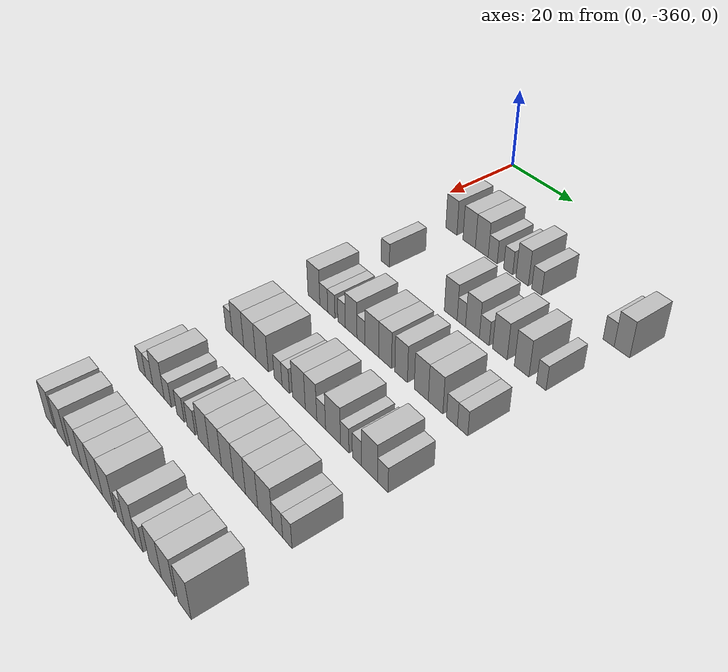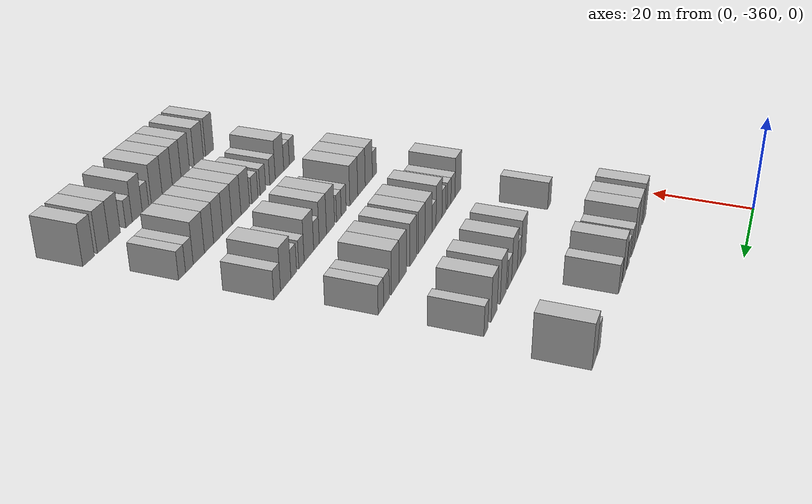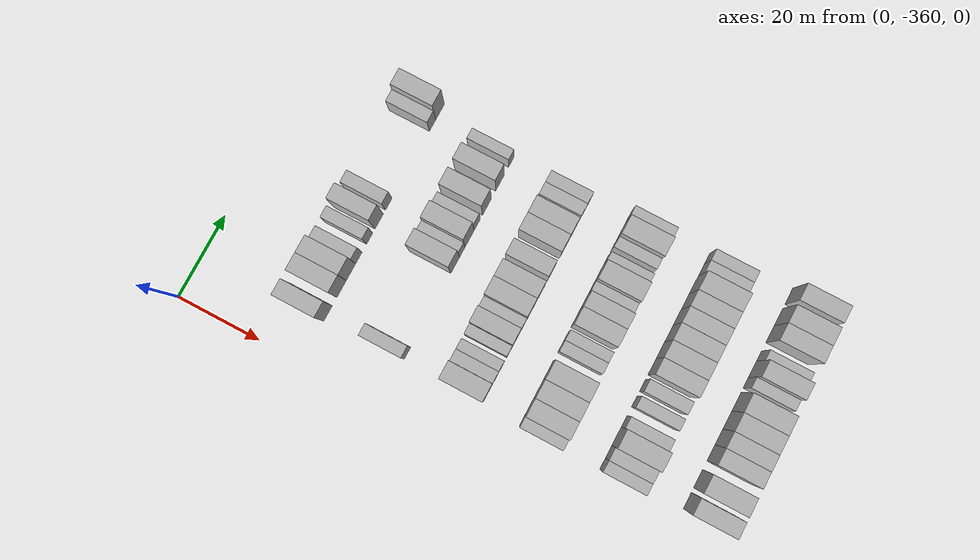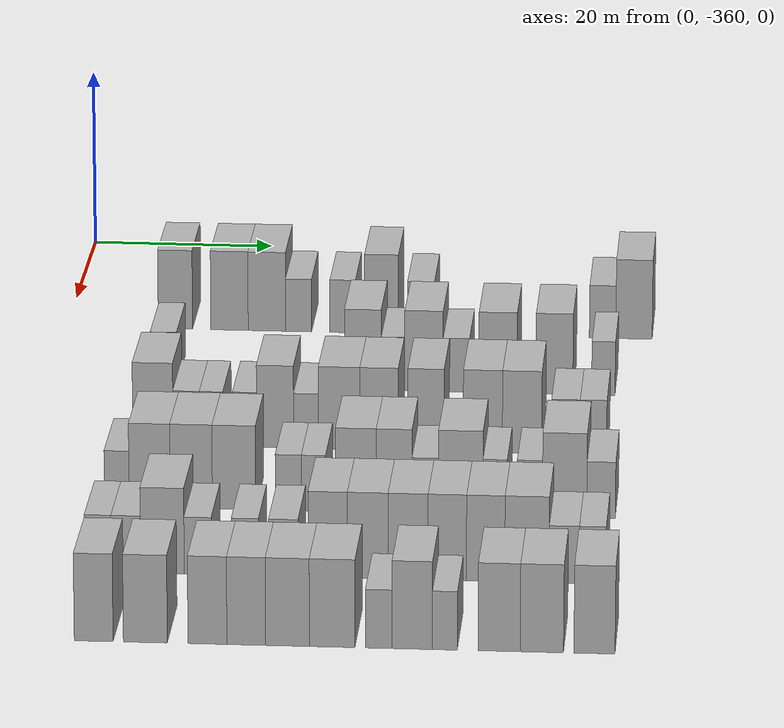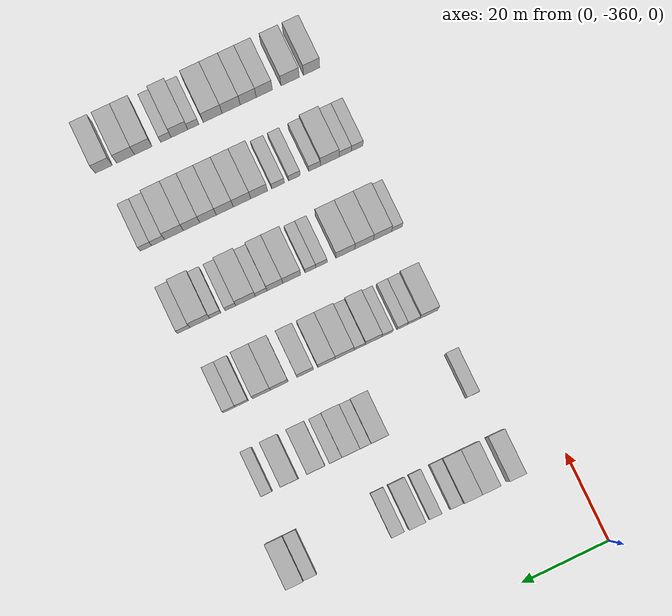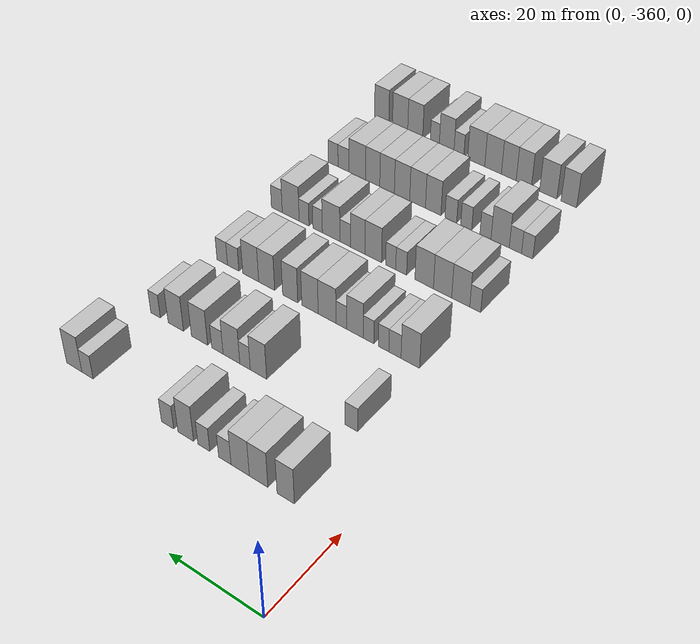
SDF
<sdf version="1.6">
 <world name="default">
  <model name="building_1">
   <static>1</static>
   <pose>25.0000 -348.1258 0 0.000000 0.000000 0.000000</pose>
   <link name="link">
    <pose>0 0 4.50 0 0 0</pose>
    <collision name="collision"><geometry><box><size>10.0000 3.7484 9.0000</size></box></geometry></collision>
    <visual name="visual">
     <cast_shadows>0</cast_shadows>
     <geometry><box><size>10.0000 3.7484 9.0000</size></box></geometry>
     <material>
      <script>
       <uri>model://HANNAS_wall/materials/scripts</uri>
       <uri>model://HANNAS_wall/materials/textures</uri>
       <name>vrc/HANNAS_wall</name>
      </script>
     </material>
    </visual>
   </link>
  </model>
  <model name="building_2">
   <static>1</static>
   <pose>25.0000 -342.2072 0 0.000000 0.000000 0.000000</pose>
   <link name="link">
    <pose>0 0 4.50 0 0 0</pose>
    <collision name="collision"><geometry><box><size>10.0000 4.0888 9.0000</size></box></geometry></collision>
    <visual name="visual">
     <cast_shadows>0</cast_shadows>
     <geometry><box><size>10.0000 4.0888 9.0000</size></box></geometry>
     <material>
      <script>
       <uri>model://HANNAS_wall/materials/scripts</uri>
       <uri>model://HANNAS_wall/materials/textures</uri>
       <name>vrc/HANNAS_wall</name>
      </script>
     </material>
    </visual>
   </link>
  </model>
  <model name="building_3">
   <static>1</static>
   <pose>25.0000 -338.1127 0 0.000000 0.000000 0.000000</pose>
   <link name="link">
    <pose>0 0 4.50 0 0 0</pose>
    <collision name="collision"><geometry><box><size>10.0000 4.1001 9.0000</size></box></geometry></collision>
    <visual name="visual">
     <cast_shadows>0</cast_shadows>
     <geometry><box><size>10.0000 4.1001 9.0000</size></box></geometry>
     <material>
      <script>
       <uri>model://HANNAS_wall/materials/scripts</uri>
       <uri>model://HANNAS_wall/materials/textures</uri>
       <name>vrc/HANNAS_wall</name>
      </script>
     </material>
    </visual>
   </link>
  </model>
  <model name="building_4">
   <static>1</static>
   <pose>25.0000 -334.6447 0 0.000000 0.000000 0.000000</pose>
   <link name="link">
    <pose>0 0 3.00 0 0 0</pose>
    <collision name="collision"><geometry><box><size>10.0000 2.8359 6.0000</size></box></geometry></collision>
    <visual name="visual">
     <cast_shadows>0</cast_shadows>
     <geometry><box><size>10.0000 2.8359 6.0000</size></box></geometry>
     <material>
      <script>
       <uri>model://HANNAS_wall/materials/scripts</uri>
       <uri>model://HANNAS_wall/materials/textures</uri>
       <name>vrc/HANNAS_wall</name>
      </script>
     </material>
    </visual>
   </link>
  </model>
  <model name="building_5">
   <static>1</static>
   <pose>25.0000 -329.8384 0 0.000000 0.000000 0.000000</pose>
   <link name="link">
    <pose>0 0 3.00 0 0 0</pose>
    <collision name="collision"><geometry><box><size>10.0000 2.7767 6.0000</size></box></geometry></collision>
    <visual name="visual">
     <cast_shadows>0</cast_shadows>
     <geometry><box><size>10.0000 2.7767 6.0000</size></box></geometry>
     <material>
      <script>
       <uri>model://HANNAS_wall/materials/scripts</uri>
       <uri>model://HANNAS_wall/materials/textures</uri>
       <name>vrc/HANNAS_wall</name>
      </script>
     </material>
    </visual>
   </link>
  </model>
  <model name="building_6">
   <static>1</static>
   <pose>25.0000 -325.6081 0 0.000000 0.000000 0.000000</pose>
   <link name="link">
    <pose>0 0 4.50 0 0 0</pose>
    <collision name="collision"><geometry><box><size>10.0000 3.6839 9.0000</size></box></geometry></collision>
    <visual name="visual">
     <cast_shadows>0</cast_shadows>
     <geometry><box><size>10.0000 3.6839 9.0000</size></box></geometry>
     <material>
      <script>
       <uri>model://HANNAS_wall/materials/scripts</uri>
       <uri>model://HANNAS_wall/materials/textures</uri>
       <name>vrc/HANNAS_wall</name>
      </script>
     </material>
    </visual>
   </link>
  </model>
  <model name="building_7">
   <static>1</static>
   <pose>25.0000 -321.3060 0 0.000000 0.000000 0.000000</pose>
   <link name="link">
    <pose>0 0 3.00 0 0 0</pose>
    <collision name="collision"><geometry><box><size>10.0000 2.9201 6.0000</size></box></geometry></collision>
    <visual name="visual">
     <cast_shadows>0</cast_shadows>
     <geometry><box><size>10.0000 2.9201 6.0000</size></box></geometry>
     <material>
      <script>
       <uri>model://HANNAS_wall/materials/scripts</uri>
       <uri>model://HANNAS_wall/materials/textures</uri>
       <name>vrc/HANNAS_wall</name>
      </script>
     </material>
    </visual>
   </link>
  </model>
  <model name="building_8">
   <static>1</static>
   <pose>25.0000 -301.5321 0 0.000000 0.000000 0.000000</pose>
   <link name="link">
    <pose>0 0 3.00 0 0 0</pose>
    <collision name="collision"><geometry><box><size>10.0000 2.8759 6.0000</size></box></geometry></collision>
    <visual name="visual">
     <cast_shadows>0</cast_shadows>
     <geometry><box><size>10.0000 2.8759 6.0000</size></box></geometry>
     <material>
      <script>
       <uri>model://HANNAS_wall/materials/scripts</uri>
       <uri>model://HANNAS_wall/materials/textures</uri>
       <name>vrc/HANNAS_wall</name>
      </script>
     </material>
    </visual>
   </link>
  </model>
  <model name="building_9">
   <static>1</static>
   <pose>25.0000 -298.1190 0 0.000000 0.000000 0.000000</pose>
   <link name="link">
    <pose>0 0 4.50 0 0 0</pose>
    <collision name="collision"><geometry><box><size>10.0000 3.9503 9.0000</size></box></geometry></collision>
    <visual name="visual">
     <cast_shadows>0</cast_shadows>
     <geometry><box><size>10.0000 3.9503 9.0000</size></box></geometry>
     <material>
      <script>
       <uri>model://HANNAS_wall/materials/scripts</uri>
       <uri>model://HANNAS_wall/materials/textures</uri>
       <name>vrc/HANNAS_wall</name>
      </script>
     </material>
    </visual>
   </link>
  </model>
  <model name="building_173">
   <static>1</static>
   <pose>44.0000 -347.5915 0 0.000000 0.000000 0.000000</pose>
   <link name="link">
    <pose>0 0 3.00 0 0 0</pose>
    <collision name="collision"><geometry><box><size>10.0000 2.8170 6.0000</size></box></geometry></collision>
    <visual name="visual">
     <cast_shadows>0</cast_shadows>
     <geometry><box><size>10.0000 2.8170 6.0000</size></box></geometry>
     <material>
      <script>
       <uri>model://HANNAS_wall/materials/scripts</uri>
       <uri>model://HANNAS_wall/materials/textures</uri>
       <name>vrc/HANNAS_wall</name>
      </script>
     </material>
    </visual>
   </link>
  </model>
  <model name="building_174">
   <static>1</static>
   <pose>44.0000 -326.3279 0 0.000000 0.000000 0.000000</pose>
   <link name="link">
    <pose>0 0 4.50 0 0 0</pose>
    <collision name="collision"><geometry><box><size>10.0000 3.9034 9.0000</size></box></geometry></collision>
    <visual name="visual">
     <cast_shadows>0</cast_shadows>
     <geometry><box><size>10.0000 3.9034 9.0000</size></box></geometry>
     <material>
      <script>
       <uri>model://HANNAS_wall/materials/scripts</uri>
       <uri>model://HANNAS_wall/materials/textures</uri>
       <name>vrc/HANNAS_wall</name>
      </script>
     </material>
    </visual>
   </link>
  </model>
  <model name="building_175">
   <static>1</static>
   <pose>44.0000 -323.1210 0 0.000000 0.000000 0.000000</pose>
   <link name="link">
    <pose>0 0 3.00 0 0 0</pose>
    <collision name="collision"><geometry><box><size>10.0000 2.5105 6.0000</size></box></geometry></collision>
    <visual name="visual">
     <cast_shadows>0</cast_shadows>
     <geometry><box><size>10.0000 2.5105 6.0000</size></box></geometry>
     <material>
      <script>
       <uri>model://HANNAS_wall/materials/scripts</uri>
       <uri>model://HANNAS_wall/materials/textures</uri>
       <name>vrc/HANNAS_wall</name>
      </script>
     </material>
    </visual>
   </link>
  </model>
  <model name="building_176">
   <static>1</static>
   <pose>44.0000 -319.8290 0 0.000000 0.000000 0.000000</pose>
   <link name="link">
    <pose>0 0 4.50 0 0 0</pose>
    <collision name="collision"><geometry><box><size>10.0000 4.0735 9.0000</size></box></geometry></collision>
    <visual name="visual">
     <cast_shadows>0</cast_shadows>
     <geometry><box><size>10.0000 4.0735 9.0000</size></box></geometry>
     <material>
      <script>
       <uri>model://HANNAS_wall/materials/scripts</uri>
       <uri>model://HANNAS_wall/materials/textures</uri>
       <name>vrc/HANNAS_wall</name>
      </script>
     </material>
    </visual>
   </link>
  </model>
  <model name="building_177">
   <static>1</static>
   <pose>44.0000 -316.3915 0 0.000000 0.000000 0.000000</pose>
   <link name="link">
    <pose>0 0 3.00 0 0 0</pose>
    <collision name="collision"><geometry><box><size>10.0000 2.8015 6.0000</size></box></geometry></collision>
    <visual name="visual">
     <cast_shadows>0</cast_shadows>
     <geometry><box><size>10.0000 2.8015 6.0000</size></box></geometry>
     <material>
      <script>
       <uri>model://HANNAS_wall/materials/scripts</uri>
       <uri>model://HANNAS_wall/materials/textures</uri>
       <name>vrc/HANNAS_wall</name>
      </script>
     </material>
    </visual>
   </link>
  </model>
  <model name="building_178">
   <static>1</static>
   <pose>44.0000 -311.9618 0 0.000000 0.000000 0.000000</pose>
   <link name="link">
    <pose>0 0 4.50 0 0 0</pose>
    <collision name="collision"><geometry><box><size>10.0000 4.0581 9.0000</size></box></geometry></collision>
    <visual name="visual">
     <cast_shadows>0</cast_shadows>
     <geometry><box><size>10.0000 4.0581 9.0000</size></box></geometry>
     <material>
      <script>
       <uri>model://HANNAS_wall/materials/scripts</uri>
       <uri>model://HANNAS_wall/materials/textures</uri>
       <name>vrc/HANNAS_wall</name>
      </script>
     </material>
    </visual>
   </link>
  </model>
  <model name="building_179">
   <static>1</static>
   <pose>44.0000 -305.9661 0 0.000000 0.000000 0.000000</pose>
   <link name="link">
    <pose>0 0 4.50 0 0 0</pose>
    <collision name="collision"><geometry><box><size>10.0000 3.9331 9.0000</size></box></geometry></collision>
    <visual name="visual">
     <cast_shadows>0</cast_shadows>
     <geometry><box><size>10.0000 3.9331 9.0000</size></box></geometry>
     <material>
      <script>
       <uri>model://HANNAS_wall/materials/scripts</uri>
       <uri>model://HANNAS_wall/materials/textures</uri>
       <name>vrc/HANNAS_wall</name>
      </script>
     </material>
    </visual>
   </link>
  </model>
  <model name="building_180">
   <static>1</static>
   <pose>44.0000 -300.7584 0 0.000000 0.000000 0.000000</pose>
   <link name="link">
    <pose>0 0 3.00 0 0 0</pose>
    <collision name="collision"><geometry><box><size>10.0000 2.4824 6.0000</size></box></geometry></collision>
    <visual name="visual">
     <cast_shadows>0</cast_shadows>
     <geometry><box><size>10.0000 2.4824 6.0000</size></box></geometry>
     <material>
      <script>
       <uri>model://HANNAS_wall/materials/scripts</uri>
       <uri>model://HANNAS_wall/materials/textures</uri>
       <name>vrc/HANNAS_wall</name>
      </script>
     </material>
    </visual>
   </link>
  </model>
  <model name="building_348">
   <static>1</static>
   <pose>63.0000 -346.9010 0 0.000000 0.000000 0.000000</pose>
   <link name="link">
    <pose>0 0 4.50 0 0 0</pose>
    <collision name="collision"><geometry><box><size>10.0000 4.1980 9.0000</size></box></geometry></collision>
    <visual name="visual">
     <cast_shadows>0</cast_shadows>
     <geometry><box><size>10.0000 4.1980 9.0000</size></box></geometry>
     <material>
      <script>
       <uri>model://HANNAS_wall/materials/scripts</uri>
       <uri>model://HANNAS_wall/materials/textures</uri>
       <name>vrc/HANNAS_wall</name>
      </script>
     </material>
    </visual>
   </link>
  </model>
  <model name="building_349">
   <static>1</static>
   <pose>63.0000 -343.4154 0 0.000000 0.000000 0.000000</pose>
   <link name="link">
    <pose>0 0 3.00 0 0 0</pose>
    <collision name="collision"><geometry><box><size>10.0000 2.7731 6.0000</size></box></geometry></collision>
    <visual name="visual">
     <cast_shadows>0</cast_shadows>
     <geometry><box><size>10.0000 2.7731 6.0000</size></box></geometry>
     <material>
      <script>
       <uri>model://HANNAS_wall/materials/scripts</uri>
       <uri>model://HANNAS_wall/materials/textures</uri>
       <name>vrc/HANNAS_wall</name>
      </script>
     </material>
    </visual>
   </link>
  </model>
  <model name="building_350">
   <static>1</static>
   <pose>63.0000 -340.8067 0 0.000000 0.000000 0.000000</pose>
   <link name="link">
    <pose>0 0 3.00 0 0 0</pose>
    <collision name="collision"><geometry><box><size>10.0000 2.4443 6.0000</size></box></geometry></collision>
    <visual name="visual">
     <cast_shadows>0</cast_shadows>
     <geometry><box><size>10.0000 2.4443 6.0000</size></box></geometry>
     <material>
      <script>
       <uri>model://HANNAS_wall/materials/scripts</uri>
       <uri>model://HANNAS_wall/materials/textures</uri>
       <name>vrc/HANNAS_wall</name>
      </script>
     </material>
    </visual>
   </link>
  </model>
  <model name="building_351">
   <static>1</static>
   <pose>63.0000 -337.3330 0 0.000000 0.000000 0.000000</pose>
   <link name="link">
    <pose>0 0 3.00 0 0 0</pose>
    <collision name="collision"><geometry><box><size>10.0000 2.5032 6.0000</size></box></geometry></collision>
    <visual name="visual">
     <cast_shadows>0</cast_shadows>
     <geometry><box><size>10.0000 2.5032 6.0000</size></box></geometry>
     <material>
      <script>
       <uri>model://HANNAS_wall/materials/scripts</uri>
       <uri>model://HANNAS_wall/materials/textures</uri>
       <name>vrc/HANNAS_wall</name>
      </script>
     </material>
    </visual>
   </link>
  </model>
  <model name="building_352">
   <static>1</static>
   <pose>63.0000 -334.1559 0 0.000000 0.000000 0.000000</pose>
   <link name="link">
    <pose>0 0 4.50 0 0 0</pose>
    <collision name="collision"><geometry><box><size>10.0000 3.8510 9.0000</size></box></geometry></collision>
    <visual name="visual">
     <cast_shadows>0</cast_shadows>
     <geometry><box><size>10.0000 3.8510 9.0000</size></box></geometry>
     <material>
      <script>
       <uri>model://HANNAS_wall/materials/scripts</uri>
       <uri>model://HANNAS_wall/materials/textures</uri>
       <name>vrc/HANNAS_wall</name>
      </script>
     </material>
    </visual>
   </link>
  </model>
  <model name="building_353">
   <static>1</static>
   <pose>63.0000 -330.9422 0 0.000000 0.000000 0.000000</pose>
   <link name="link">
    <pose>0 0 3.00 0 0 0</pose>
    <collision name="collision"><geometry><box><size>10.0000 2.5764 6.0000</size></box></geometry></collision>
    <visual name="visual">
     <cast_shadows>0</cast_shadows>
     <geometry><box><size>10.0000 2.5764 6.0000</size></box></geometry>
     <material>
      <script>
       <uri>model://HANNAS_wall/materials/scripts</uri>
       <uri>model://HANNAS_wall/materials/textures</uri>
       <name>vrc/HANNAS_wall</name>
      </script>
     </material>
    </visual>
   </link>
  </model>
  <model name="building_354">
   <static>1</static>
   <pose>63.0000 -327.4999 0 0.000000 0.000000 0.000000</pose>
   <link name="link">
    <pose>0 0 4.50 0 0 0</pose>
    <collision name="collision"><geometry><box><size>10.0000 4.3082 9.0000</size></box></geometry></collision>
    <visual name="visual">
     <cast_shadows>0</cast_shadows>
     <geometry><box><size>10.0000 4.3082 9.0000</size></box></geometry>
     <material>
      <script>
       <uri>model://HANNAS_wall/materials/scripts</uri>
       <uri>model://HANNAS_wall/materials/textures</uri>
       <name>vrc/HANNAS_wall</name>
      </script>
     </material>
    </visual>
   </link>
  </model>
  <model name="building_355">
   <static>1</static>
   <pose>63.0000 -323.3483 0 0.000000 0.000000 0.000000</pose>
   <link name="link">
    <pose>0 0 4.50 0 0 0</pose>
    <collision name="collision"><geometry><box><size>10.0000 3.9948 9.0000</size></box></geometry></collision>
    <visual name="visual">
     <cast_shadows>0</cast_shadows>
     <geometry><box><size>10.0000 3.9948 9.0000</size></box></geometry>
     <material>
      <script>
       <uri>model://HANNAS_wall/materials/scripts</uri>
       <uri>model://HANNAS_wall/materials/textures</uri>
       <name>vrc/HANNAS_wall</name>
      </script>
     </material>
    </visual>
   </link>
  </model>
  <model name="building_356">
   <static>1</static>
   <pose>63.0000 -318.4736 0 0.000000 0.000000 0.000000</pose>
   <link name="link">
    <pose>0 0 4.50 0 0 0</pose>
    <collision name="collision"><geometry><box><size>10.0000 3.7547 9.0000</size></box></geometry></collision>
    <visual name="visual">
     <cast_shadows>0</cast_shadows>
     <geometry><box><size>10.0000 3.7547 9.0000</size></box></geometry>
     <material>
      <script>
       <uri>model://HANNAS_wall/materials/scripts</uri>
       <uri>model://HANNAS_wall/materials/textures</uri>
       <name>vrc/HANNAS_wall</name>
      </script>
     </material>
    </visual>
   </link>
  </model>
  <model name="building_357">
   <static>1</static>
   <pose>63.0000 -312.5669 0 0.000000 0.000000 0.000000</pose>
   <link name="link">
    <pose>0 0 4.50 0 0 0</pose>
    <collision name="collision"><geometry><box><size>10.0000 4.0587 9.0000</size></box></geometry></collision>
    <visual name="visual">
     <cast_shadows>0</cast_shadows>
     <geometry><box><size>10.0000 4.0587 9.0000</size></box></geometry>
     <material>
      <script>
       <uri>model://HANNAS_wall/materials/scripts</uri>
       <uri>model://HANNAS_wall/materials/textures</uri>
       <name>vrc/HANNAS_wall</name>
      </script>
     </material>
    </visual>
   </link>
  </model>
  <model name="building_358">
   <static>1</static>
   <pose>63.0000 -308.4994 0 0.000000 0.000000 0.000000</pose>
   <link name="link">
    <pose>0 0 4.50 0 0 0</pose>
    <collision name="collision"><geometry><box><size>10.0000 4.0764 9.0000</size></box></geometry></collision>
    <visual name="visual">
     <cast_shadows>0</cast_shadows>
     <geometry><box><size>10.0000 4.0764 9.0000</size></box></geometry>
     <material>
      <script>
       <uri>model://HANNAS_wall/materials/scripts</uri>
       <uri>model://HANNAS_wall/materials/textures</uri>
       <name>vrc/HANNAS_wall</name>
      </script>
     </material>
    </visual>
   </link>
  </model>
  <model name="building_359">
   <static>1</static>
   <pose>63.0000 -303.9782 0 0.000000 0.000000 0.000000</pose>
   <link name="link">
    <pose>0 0 3.00 0 0 0</pose>
    <collision name="collision"><geometry><box><size>10.0000 2.9660 6.0000</size></box></geometry></collision>
    <visual name="visual">
     <cast_shadows>0</cast_shadows>
     <geometry><box><size>10.0000 2.9660 6.0000</size></box></geometry>
     <material>
      <script>
       <uri>model://HANNAS_wall/materials/scripts</uri>
       <uri>model://HANNAS_wall/materials/textures</uri>
       <name>vrc/HANNAS_wall</name>
      </script>
     </material>
    </visual>
   </link>
  </model>
  <model name="building_360">
   <static>1</static>
   <pose>63.0000 -301.1115 0 0.000000 0.000000 0.000000</pose>
   <link name="link">
    <pose>0 0 3.00 0 0 0</pose>
    <collision name="collision"><geometry><box><size>10.0000 2.7674 6.0000</size></box></geometry></collision>
    <visual name="visual">
     <cast_shadows>0</cast_shadows>
     <geometry><box><size>10.0000 2.7674 6.0000</size></box></geometry>
     <material>
      <script>
       <uri>model://HANNAS_wall/materials/scripts</uri>
       <uri>model://HANNAS_wall/materials/textures</uri>
       <name>vrc/HANNAS_wall</name>
      </script>
     </material>
    </visual>
   </link>
  </model>
  <model name="building_513">
   <static>1</static>
   <pose>82.0000 -348.7434 0 0.000000 0.000000 0.000000</pose>
   <link name="link">
    <pose>0 0 3.00 0 0 0</pose>
    <collision name="collision"><geometry><box><size>10.0000 2.5133 6.0000</size></box></geometry></collision>
    <visual name="visual">
     <cast_shadows>0</cast_shadows>
     <geometry><box><size>10.0000 2.5133 6.0000</size></box></geometry>
     <material>
      <script>
       <uri>model://HANNAS_wall/materials/scripts</uri>
       <uri>model://HANNAS_wall/materials/textures</uri>
       <name>vrc/HANNAS_wall</name>
      </script>
     </material>
    </visual>
   </link>
  </model>
  <model name="building_514">
   <static>1</static>
   <pose>82.0000 -345.3967 0 0.000000 0.000000 0.000000</pose>
   <link name="link">
    <pose>0 0 4.50 0 0 0</pose>
    <collision name="collision"><geometry><box><size>10.0000 4.1801 9.0000</size></box></geometry></collision>
    <visual name="visual">
     <cast_shadows>0</cast_shadows>
     <geometry><box><size>10.0000 4.1801 9.0000</size></box></geometry>
     <material>
      <script>
       <uri>model://HANNAS_wall/materials/scripts</uri>
       <uri>model://HANNAS_wall/materials/textures</uri>
       <name>vrc/HANNAS_wall</name>
      </script>
     </material>
    </visual>
   </link>
  </model>
  <model name="building_515">
   <static>1</static>
   <pose>82.0000 -341.1570 0 0.000000 0.000000 0.000000</pose>
   <link name="link">
    <pose>0 0 4.50 0 0 0</pose>
    <collision name="collision"><geometry><box><size>10.0000 4.2993 9.0000</size></box></geometry></collision>
    <visual name="visual">
     <cast_shadows>0</cast_shadows>
     <geometry><box><size>10.0000 4.2993 9.0000</size></box></geometry>
     <material>
      <script>
       <uri>model://HANNAS_wall/materials/scripts</uri>
       <uri>model://HANNAS_wall/materials/textures</uri>
       <name>vrc/HANNAS_wall</name>
      </script>
     </material>
    </visual>
   </link>
  </model>
  <model name="building_516">
   <static>1</static>
   <pose>82.0000 -336.8044 0 0.000000 0.000000 0.000000</pose>
   <link name="link">
    <pose>0 0 4.50 0 0 0</pose>
    <collision name="collision"><geometry><box><size>10.0000 4.4060 9.0000</size></box></geometry></collision>
    <visual name="visual">
     <cast_shadows>0</cast_shadows>
     <geometry><box><size>10.0000 4.4060 9.0000</size></box></geometry>
     <material>
      <script>
       <uri>model://HANNAS_wall/materials/scripts</uri>
       <uri>model://HANNAS_wall/materials/textures</uri>
       <name>vrc/HANNAS_wall</name>
      </script>
     </material>
    </visual>
   </link>
  </model>
  <model name="building_517">
   <static>1</static>
   <pose>82.0000 -331.2815 0 0.000000 0.000000 0.000000</pose>
   <link name="link">
    <pose>0 0 3.00 0 0 0</pose>
    <collision name="collision"><geometry><box><size>10.0000 2.6397 6.0000</size></box></geometry></collision>
    <visual name="visual">
     <cast_shadows>0</cast_shadows>
     <geometry><box><size>10.0000 2.6397 6.0000</size></box></geometry>
     <material>
      <script>
       <uri>model://HANNAS_wall/materials/scripts</uri>
       <uri>model://HANNAS_wall/materials/textures</uri>
       <name>vrc/HANNAS_wall</name>
      </script>
     </material>
    </visual>
   </link>
  </model>
  <model name="building_518">
   <static>1</static>
   <pose>82.0000 -328.7309 0 0.000000 0.000000 0.000000</pose>
   <link name="link">
    <pose>0 0 3.00 0 0 0</pose>
    <collision name="collision"><geometry><box><size>10.0000 2.4615 6.0000</size></box></geometry></collision>
    <visual name="visual">
     <cast_shadows>0</cast_shadows>
     <geometry><box><size>10.0000 2.4615 6.0000</size></box></geometry>
     <material>
      <script>
       <uri>model://HANNAS_wall/materials/scripts</uri>
       <uri>model://HANNAS_wall/materials/textures</uri>
       <name>vrc/HANNAS_wall</name>
      </script>
     </material>
    </visual>
   </link>
  </model>
  <model name="building_519">
   <static>1</static>
   <pose>82.0000 -324.4295 0 0.000000 0.000000 0.000000</pose>
   <link name="link">
    <pose>0 0 4.50 0 0 0</pose>
    <collision name="collision"><geometry><box><size>10.0000 4.1412 9.0000</size></box></geometry></collision>
    <visual name="visual">
     <cast_shadows>0</cast_shadows>
     <geometry><box><size>10.0000 4.1412 9.0000</size></box></geometry>
     <material>
      <script>
       <uri>model://HANNAS_wall/materials/scripts</uri>
       <uri>model://HANNAS_wall/materials/textures</uri>
       <name>vrc/HANNAS_wall</name>
      </script>
     </material>
    </visual>
   </link>
  </model>
  <model name="building_520">
   <static>1</static>
   <pose>82.0000 -320.5524 0 0.000000 0.000000 0.000000</pose>
   <link name="link">
    <pose>0 0 4.50 0 0 0</pose>
    <collision name="collision"><geometry><box><size>10.0000 3.6130 9.0000</size></box></geometry></collision>
    <visual name="visual">
     <cast_shadows>0</cast_shadows>
     <geometry><box><size>10.0000 3.6130 9.0000</size></box></geometry>
     <material>
      <script>
       <uri>model://HANNAS_wall/materials/scripts</uri>
       <uri>model://HANNAS_wall/materials/textures</uri>
       <name>vrc/HANNAS_wall</name>
      </script>
     </material>
    </visual>
   </link>
  </model>
  <model name="building_521">
   <static>1</static>
   <pose>82.0000 -317.4022 0 0.000000 0.000000 0.000000</pose>
   <link name="link">
    <pose>0 0 3.00 0 0 0</pose>
    <collision name="collision"><geometry><box><size>10.0000 2.6873 6.0000</size></box></geometry></collision>
    <visual name="visual">
     <cast_shadows>0</cast_shadows>
     <geometry><box><size>10.0000 2.6873 6.0000</size></box></geometry>
     <material>
      <script>
       <uri>model://HANNAS_wall/materials/scripts</uri>
       <uri>model://HANNAS_wall/materials/textures</uri>
       <name>vrc/HANNAS_wall</name>
      </script>
     </material>
    </visual>
   </link>
  </model>
  <model name="building_522">
   <static>1</static>
   <pose>82.0000 -313.8112 0 0.000000 0.000000 0.000000</pose>
   <link name="link">
    <pose>0 0 4.50 0 0 0</pose>
    <collision name="collision"><geometry><box><size>10.0000 4.4947 9.0000</size></box></geometry></collision>
    <visual name="visual">
     <cast_shadows>0</cast_shadows>
     <geometry><box><size>10.0000 4.4947 9.0000</size></box></geometry>
     <material>
      <script>
       <uri>model://HANNAS_wall/materials/scripts</uri>
       <uri>model://HANNAS_wall/materials/textures</uri>
       <name>vrc/HANNAS_wall</name>
      </script>
     </material>
    </visual>
   </link>
  </model>
  <model name="building_523">
   <static>1</static>
   <pose>82.0000 -310.3334 0 0.000000 0.000000 0.000000</pose>
   <link name="link">
    <pose>0 0 3.00 0 0 0</pose>
    <collision name="collision"><geometry><box><size>10.0000 2.4610 6.0000</size></box></geometry></collision>
    <visual name="visual">
     <cast_shadows>0</cast_shadows>
     <geometry><box><size>10.0000 2.4610 6.0000</size></box></geometry>
     <material>
      <script>
       <uri>model://HANNAS_wall/materials/scripts</uri>
       <uri>model://HANNAS_wall/materials/textures</uri>
       <name>vrc/HANNAS_wall</name>
      </script>
     </material>
    </visual>
   </link>
  </model>
  <model name="building_524">
   <static>1</static>
   <pose>82.0000 -306.8168 0 0.000000 0.000000 0.000000</pose>
   <link name="link">
    <pose>0 0 3.00 0 0 0</pose>
    <collision name="collision"><geometry><box><size>10.0000 2.5723 6.0000</size></box></geometry></collision>
    <visual name="visual">
     <cast_shadows>0</cast_shadows>
     <geometry><box><size>10.0000 2.5723 6.0000</size></box></geometry>
     <material>
      <script>
       <uri>model://HANNAS_wall/materials/scripts</uri>
       <uri>model://HANNAS_wall/materials/textures</uri>
       <name>vrc/HANNAS_wall</name>
      </script>
     </material>
    </visual>
   </link>
  </model>
  <model name="building_525">
   <static>1</static>
   <pose>82.0000 -303.2881 0 0.000000 0.000000 0.000000</pose>
   <link name="link">
    <pose>0 0 4.50 0 0 0</pose>
    <collision name="collision"><geometry><box><size>10.0000 4.4851 9.0000</size></box></geometry></collision>
    <visual name="visual">
     <cast_shadows>0</cast_shadows>
     <geometry><box><size>10.0000 4.4851 9.0000</size></box></geometry>
     <material>
      <script>
       <uri>model://HANNAS_wall/materials/scripts</uri>
       <uri>model://HANNAS_wall/materials/textures</uri>
       <name>vrc/HANNAS_wall</name>
      </script>
     </material>
    </visual>
   </link>
  </model>
  <model name="building_526">
   <static>1</static>
   <pose>82.0000 -299.5982 0 0.000000 0.000000 0.000000</pose>
   <link name="link">
    <pose>0 0 3.00 0 0 0</pose>
    <collision name="collision"><geometry><box><size>10.0000 2.8948 6.0000</size></box></geometry></collision>
    <visual name="visual">
     <cast_shadows>0</cast_shadows>
     <geometry><box><size>10.0000 2.8948 6.0000</size></box></geometry>
     <material>
      <script>
       <uri>model://HANNAS_wall/materials/scripts</uri>
       <uri>model://HANNAS_wall/materials/textures</uri>
       <name>vrc/HANNAS_wall</name>
      </script>
     </material>
    </visual>
   </link>
  </model>
  <model name="building_688">
   <static>1</static>
   <pose>101.0000 -348.6776 0 0.000000 0.000000 0.000000</pose>
   <link name="link">
    <pose>0 0 3.00 0 0 0</pose>
    <collision name="collision"><geometry><box><size>10.0000 2.6448 6.0000</size></box></geometry></collision>
    <visual name="visual">
     <cast_shadows>0</cast_shadows>
     <geometry><box><size>10.0000 2.6448 6.0000</size></box></geometry>
     <material>
      <script>
       <uri>model://HANNAS_wall/materials/scripts</uri>
       <uri>model://HANNAS_wall/materials/textures</uri>
       <name>vrc/HANNAS_wall</name>
      </script>
     </material>
    </visual>
   </link>
  </model>
  <model name="building_689">
   <static>1</static>
   <pose>101.0000 -345.9003 0 0.000000 0.000000 0.000000</pose>
   <link name="link">
    <pose>0 0 3.00 0 0 0</pose>
    <collision name="collision"><geometry><box><size>10.0000 2.9098 6.0000</size></box></geometry></collision>
    <visual name="visual">
     <cast_shadows>0</cast_shadows>
     <geometry><box><size>10.0000 2.9098 6.0000</size></box></geometry>
     <material>
      <script>
       <uri>model://HANNAS_wall/materials/scripts</uri>
       <uri>model://HANNAS_wall/materials/textures</uri>
       <name>vrc/HANNAS_wall</name>
      </script>
     </material>
    </visual>
   </link>
  </model>
  <model name="building_690">
   <static>1</static>
   <pose>101.0000 -342.2794 0 0.000000 0.000000 0.000000</pose>
   <link name="link">
    <pose>0 0 4.50 0 0 0</pose>
    <collision name="collision"><geometry><box><size>10.0000 4.3320 9.0000</size></box></geometry></collision>
    <visual name="visual">
     <cast_shadows>0</cast_shadows>
     <geometry><box><size>10.0000 4.3320 9.0000</size></box></geometry>
     <material>
      <script>
       <uri>model://HANNAS_wall/materials/scripts</uri>
       <uri>model://HANNAS_wall/materials/textures</uri>
       <name>vrc/HANNAS_wall</name>
      </script>
     </material>
    </visual>
   </link>
  </model>
  <model name="building_691">
   <static>1</static>
   <pose>101.0000 -338.7665 0 0.000000 0.000000 0.000000</pose>
   <link name="link">
    <pose>0 0 3.00 0 0 0</pose>
    <collision name="collision"><geometry><box><size>10.0000 2.6939 6.0000</size></box></geometry></collision>
    <visual name="visual">
     <cast_shadows>0</cast_shadows>
     <geometry><box><size>10.0000 2.6939 6.0000</size></box></geometry>
     <material>
      <script>
       <uri>model://HANNAS_wall/materials/scripts</uri>
       <uri>model://HANNAS_wall/materials/textures</uri>
       <name>vrc/HANNAS_wall</name>
      </script>
     </material>
    </visual>
   </link>
  </model>
  <model name="building_692">
   <static>1</static>
   <pose>101.0000 -334.0787 0 0.000000 0.000000 0.000000</pose>
   <link name="link">
    <pose>0 0 3.00 0 0 0</pose>
    <collision name="collision"><geometry><box><size>10.0000 2.6816 6.0000</size></box></geometry></collision>
    <visual name="visual">
     <cast_shadows>0</cast_shadows>
     <geometry><box><size>10.0000 2.6816 6.0000</size></box></geometry>
     <material>
      <script>
       <uri>model://HANNAS_wall/materials/scripts</uri>
       <uri>model://HANNAS_wall/materials/textures</uri>
       <name>vrc/HANNAS_wall</name>
      </script>
     </material>
    </visual>
   </link>
  </model>
  <model name="building_693">
   <static>1</static>
   <pose>101.0000 -330.2829 0 0.000000 0.000000 0.000000</pose>
   <link name="link">
    <pose>0 0 3.00 0 0 0</pose>
    <collision name="collision"><geometry><box><size>10.0000 2.9099 6.0000</size></box></geometry></collision>
    <visual name="visual">
     <cast_shadows>0</cast_shadows>
     <geometry><box><size>10.0000 2.9099 6.0000</size></box></geometry>
     <material>
      <script>
       <uri>model://HANNAS_wall/materials/scripts</uri>
       <uri>model://HANNAS_wall/materials/textures</uri>
       <name>vrc/HANNAS_wall</name>
      </script>
     </material>
    </visual>
   </link>
  </model>
  <model name="building_694">
   <static>1</static>
   <pose>101.0000 -325.8836 0 0.000000 0.000000 0.000000</pose>
   <link name="link">
    <pose>0 0 4.50 0 0 0</pose>
    <collision name="collision"><geometry><box><size>10.0000 3.8888 9.0000</size></box></geometry></collision>
    <visual name="visual">
     <cast_shadows>0</cast_shadows>
     <geometry><box><size>10.0000 3.8888 9.0000</size></box></geometry>
     <material>
      <script>
       <uri>model://HANNAS_wall/materials/scripts</uri>
       <uri>model://HANNAS_wall/materials/textures</uri>
       <name>vrc/HANNAS_wall</name>
      </script>
     </material>
    </visual>
   </link>
  </model>
  <model name="building_695">
   <static>1</static>
   <pose>101.0000 -321.9307 0 0.000000 0.000000 0.000000</pose>
   <link name="link">
    <pose>0 0 4.50 0 0 0</pose>
    <collision name="collision"><geometry><box><size>10.0000 4.0169 9.0000</size></box></geometry></collision>
    <visual name="visual">
     <cast_shadows>0</cast_shadows>
     <geometry><box><size>10.0000 4.0169 9.0000</size></box></geometry>
     <material>
      <script>
       <uri>model://HANNAS_wall/materials/scripts</uri>
       <uri>model://HANNAS_wall/materials/textures</uri>
       <name>vrc/HANNAS_wall</name>
      </script>
     </material>
    </visual>
   </link>
  </model>
  <model name="building_696">
   <static>1</static>
   <pose>101.0000 -317.9526 0 0.000000 0.000000 0.000000</pose>
   <link name="link">
    <pose>0 0 4.50 0 0 0</pose>
    <collision name="collision"><geometry><box><size>10.0000 3.9395 9.0000</size></box></geometry></collision>
    <visual name="visual">
     <cast_shadows>0</cast_shadows>
     <geometry><box><size>10.0000 3.9395 9.0000</size></box></geometry>
     <material>
      <script>
       <uri>model://HANNAS_wall/materials/scripts</uri>
       <uri>model://HANNAS_wall/materials/textures</uri>
       <name>vrc/HANNAS_wall</name>
      </script>
     </material>
    </visual>
   </link>
  </model>
  <model name="building_697">
   <static>1</static>
   <pose>101.0000 -314.0820 0 0.000000 0.000000 0.000000</pose>
   <link name="link">
    <pose>0 0 4.50 0 0 0</pose>
    <collision name="collision"><geometry><box><size>10.0000 3.8016 9.0000</size></box></geometry></collision>
    <visual name="visual">
     <cast_shadows>0</cast_shadows>
     <geometry><box><size>10.0000 3.8016 9.0000</size></box></geometry>
     <material>
      <script>
       <uri>model://HANNAS_wall/materials/scripts</uri>
       <uri>model://HANNAS_wall/materials/textures</uri>
       <name>vrc/HANNAS_wall</name>
      </script>
     </material>
    </visual>
   </link>
  </model>
  <model name="building_698">
   <static>1</static>
   <pose>101.0000 -310.2892 0 0.000000 0.000000 0.000000</pose>
   <link name="link">
    <pose>0 0 4.50 0 0 0</pose>
    <collision name="collision"><geometry><box><size>10.0000 3.7840 9.0000</size></box></geometry></collision>
    <visual name="visual">
     <cast_shadows>0</cast_shadows>
     <geometry><box><size>10.0000 3.7840 9.0000</size></box></geometry>
     <material>
      <script>
       <uri>model://HANNAS_wall/materials/scripts</uri>
       <uri>model://HANNAS_wall/materials/textures</uri>
       <name>vrc/HANNAS_wall</name>
      </script>
     </material>
    </visual>
   </link>
  </model>
  <model name="building_699">
   <static>1</static>
   <pose>101.0000 -306.2122 0 0.000000 0.000000 0.000000</pose>
   <link name="link">
    <pose>0 0 4.50 0 0 0</pose>
    <collision name="collision"><geometry><box><size>10.0000 4.3702 9.0000</size></box></geometry></collision>
    <visual name="visual">
     <cast_shadows>0</cast_shadows>
     <geometry><box><size>10.0000 4.3702 9.0000</size></box></geometry>
     <material>
      <script>
       <uri>model://HANNAS_wall/materials/scripts</uri>
       <uri>model://HANNAS_wall/materials/textures</uri>
       <name>vrc/HANNAS_wall</name>
      </script>
     </material>
    </visual>
   </link>
  </model>
  <model name="building_700">
   <static>1</static>
   <pose>101.0000 -302.5458 0 0.000000 0.000000 0.000000</pose>
   <link name="link">
    <pose>0 0 3.00 0 0 0</pose>
    <collision name="collision"><geometry><box><size>10.0000 2.9626 6.0000</size></box></geometry></collision>
    <visual name="visual">
     <cast_shadows>0</cast_shadows>
     <geometry><box><size>10.0000 2.9626 6.0000</size></box></geometry>
     <material>
      <script>
       <uri>model://HANNAS_wall/materials/scripts</uri>
       <uri>model://HANNAS_wall/materials/textures</uri>
       <name>vrc/HANNAS_wall</name>
      </script>
     </material>
    </visual>
   </link>
  </model>
  <model name="building_701">
   <static>1</static>
   <pose>101.0000 -299.7453 0 0.000000 0.000000 0.000000</pose>
   <link name="link">
    <pose>0 0 3.00 0 0 0</pose>
    <collision name="collision"><geometry><box><size>10.0000 2.6382 6.0000</size></box></geometry></collision>
    <visual name="visual">
     <cast_shadows>0</cast_shadows>
     <geometry><box><size>10.0000 2.6382 6.0000</size></box></geometry>
     <material>
      <script>
       <uri>model://HANNAS_wall/materials/scripts</uri>
       <uri>model://HANNAS_wall/materials/textures</uri>
       <name>vrc/HANNAS_wall</name>
      </script>
     </material>
    </visual>
   </link>
  </model>
  <model name="building_869">
   <static>1</static>
   <pose>120.0000 -347.1209 0 0.000000 0.000000 0.000000</pose>
   <link name="link">
    <pose>0 0 4.50 0 0 0</pose>
    <collision name="collision"><geometry><box><size>10.0000 3.7582 9.0000</size></box></geometry></collision>
    <visual name="visual">
     <cast_shadows>0</cast_shadows>
     <geometry><box><size>10.0000 3.7582 9.0000</size></box></geometry>
     <material>
      <script>
       <uri>model://HANNAS_wall/materials/scripts</uri>
       <uri>model://HANNAS_wall/materials/textures</uri>
       <name>vrc/HANNAS_wall</name>
      </script>
     </material>
    </visual>
   </link>
  </model>
  <model name="building_870">
   <static>1</static>
   <pose>120.0000 -342.1167 0 0.000000 0.000000 0.000000</pose>
   <link name="link">
    <pose>0 0 4.50 0 0 0</pose>
    <collision name="collision"><geometry><box><size>10.0000 4.2500 9.0000</size></box></geometry></collision>
    <visual name="visual">
     <cast_shadows>0</cast_shadows>
     <geometry><box><size>10.0000 4.2500 9.0000</size></box></geometry>
     <material>
      <script>
       <uri>model://HANNAS_wall/materials/scripts</uri>
       <uri>model://HANNAS_wall/materials/textures</uri>
       <name>vrc/HANNAS_wall</name>
      </script>
     </material>
    </visual>
   </link>
  </model>
  <model name="building_871">
   <static>1</static>
   <pose>120.0000 -336.1095 0 0.000000 0.000000 0.000000</pose>
   <link name="link">
    <pose>0 0 4.50 0 0 0</pose>
    <collision name="collision"><geometry><box><size>10.0000 3.7645 9.0000</size></box></geometry></collision>
    <visual name="visual">
     <cast_shadows>0</cast_shadows>
     <geometry><box><size>10.0000 3.7645 9.0000</size></box></geometry>
     <material>
      <script>
       <uri>model://HANNAS_wall/materials/scripts</uri>
       <uri>model://HANNAS_wall/materials/textures</uri>
       <name>vrc/HANNAS_wall</name>
      </script>
     </material>
    </visual>
   </link>
  </model>
  <model name="building_872">
   <static>1</static>
   <pose>120.0000 -332.3614 0 0.000000 0.000000 0.000000</pose>
   <link name="link">
    <pose>0 0 4.50 0 0 0</pose>
    <collision name="collision"><geometry><box><size>10.0000 3.7315 9.0000</size></box></geometry></collision>
    <visual name="visual">
     <cast_shadows>0</cast_shadows>
     <geometry><box><size>10.0000 3.7315 9.0000</size></box></geometry>
     <material>
      <script>
       <uri>model://HANNAS_wall/materials/scripts</uri>
       <uri>model://HANNAS_wall/materials/textures</uri>
       <name>vrc/HANNAS_wall</name>
      </script>
     </material>
    </visual>
   </link>
  </model>
  <model name="building_873">
   <static>1</static>
   <pose>120.0000 -328.3801 0 0.000000 0.000000 0.000000</pose>
   <link name="link">
    <pose>0 0 4.50 0 0 0</pose>
    <collision name="collision"><geometry><box><size>10.0000 4.2312 9.0000</size></box></geometry></collision>
    <visual name="visual">
     <cast_shadows>0</cast_shadows>
     <geometry><box><size>10.0000 4.2312 9.0000</size></box></geometry>
     <material>
      <script>
       <uri>model://HANNAS_wall/materials/scripts</uri>
       <uri>model://HANNAS_wall/materials/textures</uri>
       <name>vrc/HANNAS_wall</name>
      </script>
     </material>
    </visual>
   </link>
  </model>
  <model name="building_874">
   <static>1</static>
   <pose>120.0000 -324.0643 0 0.000000 0.000000 0.000000</pose>
   <link name="link">
    <pose>0 0 4.50 0 0 0</pose>
    <collision name="collision"><geometry><box><size>10.0000 4.4003 9.0000</size></box></geometry></collision>
    <visual name="visual">
     <cast_shadows>0</cast_shadows>
     <geometry><box><size>10.0000 4.4003 9.0000</size></box></geometry>
     <material>
      <script>
       <uri>model://HANNAS_wall/materials/scripts</uri>
       <uri>model://HANNAS_wall/materials/textures</uri>
       <name>vrc/HANNAS_wall</name>
      </script>
     </material>
    </visual>
   </link>
  </model>
  <model name="building_875">
   <static>1</static>
   <pose>120.0000 -319.5814 0 0.000000 0.000000 0.000000</pose>
   <link name="link">
    <pose>0 0 3.00 0 0 0</pose>
    <collision name="collision"><geometry><box><size>10.0000 2.5656 6.0000</size></box></geometry></collision>
    <visual name="visual">
     <cast_shadows>0</cast_shadows>
     <geometry><box><size>10.0000 2.5656 6.0000</size></box></geometry>
     <material>
      <script>
       <uri>model://HANNAS_wall/materials/scripts</uri>
       <uri>model://HANNAS_wall/materials/textures</uri>
       <name>vrc/HANNAS_wall</name>
      </script>
     </material>
    </visual>
   </link>
  </model>
  <model name="building_876">
   <static>1</static>
   <pose>120.0000 -316.3559 0 0.000000 0.000000 0.000000</pose>
   <link name="link">
    <pose>0 0 4.50 0 0 0</pose>
    <collision name="collision"><geometry><box><size>10.0000 3.8855 9.0000</size></box></geometry></collision>
    <visual name="visual">
     <cast_shadows>0</cast_shadows>
     <geometry><box><size>10.0000 3.8855 9.0000</size></box></geometry>
     <material>
      <script>
       <uri>model://HANNAS_wall/materials/scripts</uri>
       <uri>model://HANNAS_wall/materials/textures</uri>
       <name>vrc/HANNAS_wall</name>
      </script>
     </material>
    </visual>
   </link>
  </model>
  <model name="building_877">
   <static>1</static>
   <pose>120.0000 -313.2096 0 0.000000 0.000000 0.000000</pose>
   <link name="link">
    <pose>0 0 3.00 0 0 0</pose>
    <collision name="collision"><geometry><box><size>10.0000 2.4070 6.0000</size></box></geometry></collision>
    <visual name="visual">
     <cast_shadows>0</cast_shadows>
     <geometry><box><size>10.0000 2.4070 6.0000</size></box></geometry>
     <material>
      <script>
       <uri>model://HANNAS_wall/materials/scripts</uri>
       <uri>model://HANNAS_wall/materials/textures</uri>
       <name>vrc/HANNAS_wall</name>
      </script>
     </material>
    </visual>
   </link>
  </model>
  <model name="building_878">
   <static>1</static>
   <pose>120.0000 -307.9823 0 0.000000 0.000000 0.000000</pose>
   <link name="link">
    <pose>0 0 4.50 0 0 0</pose>
    <collision name="collision"><geometry><box><size>10.0000 4.0477 9.0000</size></box></geometry></collision>
    <visual name="visual">
     <cast_shadows>0</cast_shadows>
     <geometry><box><size>10.0000 4.0477 9.0000</size></box></geometry>
     <material>
      <script>
       <uri>model://HANNAS_wall/materials/scripts</uri>
       <uri>model://HANNAS_wall/materials/textures</uri>
       <name>vrc/HANNAS_wall</name>
      </script>
     </material>
    </visual>
   </link>
  </model>
  <model name="building_879">
   <static>1</static>
   <pose>120.0000 -303.8761 0 0.000000 0.000000 0.000000</pose>
   <link name="link">
    <pose>0 0 4.50 0 0 0</pose>
    <collision name="collision"><geometry><box><size>10.0000 4.1647 9.0000</size></box></geometry></collision>
    <visual name="visual">
     <cast_shadows>0</cast_shadows>
     <geometry><box><size>10.0000 4.1647 9.0000</size></box></geometry>
     <material>
      <script>
       <uri>model://HANNAS_wall/materials/scripts</uri>
       <uri>model://HANNAS_wall/materials/textures</uri>
       <name>vrc/HANNAS_wall</name>
      </script>
     </material>
    </visual>
   </link>
  </model>
  <model name="building_880">
   <static>1</static>
   <pose>120.0000 -298.8200 0 0.000000 0.000000 0.000000</pose>
   <link name="link">
    <pose>0 0 4.50 0 0 0</pose>
    <collision name="collision"><geometry><box><size>10.0000 3.9474 9.0000</size></box></geometry></collision>
    <visual name="visual">
     <cast_shadows>0</cast_shadows>
     <geometry><box><size>10.0000 3.9474 9.0000</size></box></geometry>
     <material>
      <script>
       <uri>model://HANNAS_wall/materials/scripts</uri>
       <uri>model://HANNAS_wall/materials/textures</uri>
       <name>vrc/HANNAS_wall</name>
      </script>
     </material>
    </visual>
   </link>
  </model>
 </world>
</sdf>
